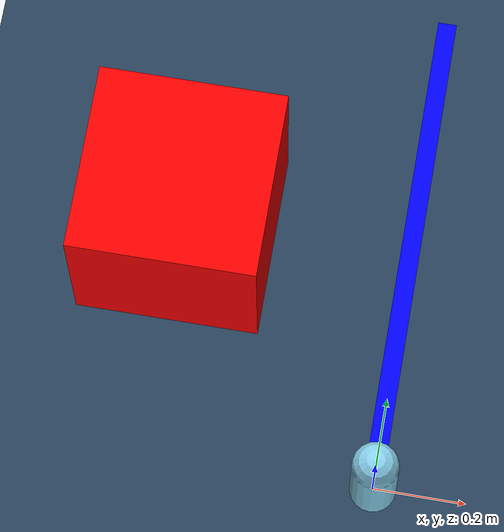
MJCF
<mujoco model="simple_joint">

    <asset>
    <texture name="grid" type="2d" builtin="checker" rgb1=".1 .2 .3"
    rgb2=".2 .3 .4" width="300" height="300" mark="edge" markrgb=".2 .3 .4"/>
    <material name="grid" texture="grid" texrepeat="2 2" texuniform="true"
    reflectance=".2"/>
  </asset>

    <compiler angle="degree"/>
    <option timestep="0.01"/>

    <worldbody>
        <light pos="0 0 1" mode="trackcom"/>
        <geom name="ground" type="plane" size="2 2 .1" material="grid" solimp=".99 .99 .01" solref=".001 1"/>
        <!-- 固定基座 -->
        <body name="base" pos="0 0 0">
            <!-- 旋转关节 S -->
            <body name="link" pos="0 0 0">
                <joint name="hinge" type="hinge" axis="0 0 1" pos="0 0 0" damping="2.0" frictionloss="1.0"/>
                <geom type="capsule" fromto="0 0 0  0 0 0.2" size="0.05" rgba="0.53 0.81 0.92 1"/>
                <body name="indicator" pos="0 0.5 0.2">
                    <geom type="box" size="0.02 0.5 0.005" rgba="0 0 1 1"/>
                </body>
            </body>

        </body>

        <!-- **添加一个自由运动的物块** -->
        <body name="block" pos="-0.5 0.5 0.2">
            <geom type="box" size="0.2 0.2 0.2" mass="10"  rgba="1 0 0 1"
                friction="1 0.5 0.5" condim="3"/>
            <joint type="free"/>
        </body>

    </worldbody>

    <!-- 添加 actuator -->
    <actuator>
        <motor joint="hinge" ctrlrange="-500 500"/>
    </actuator>
</mujoco>
